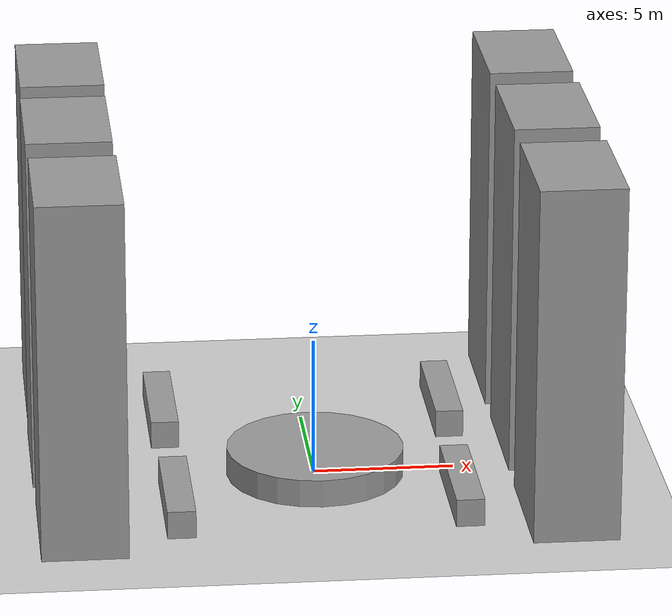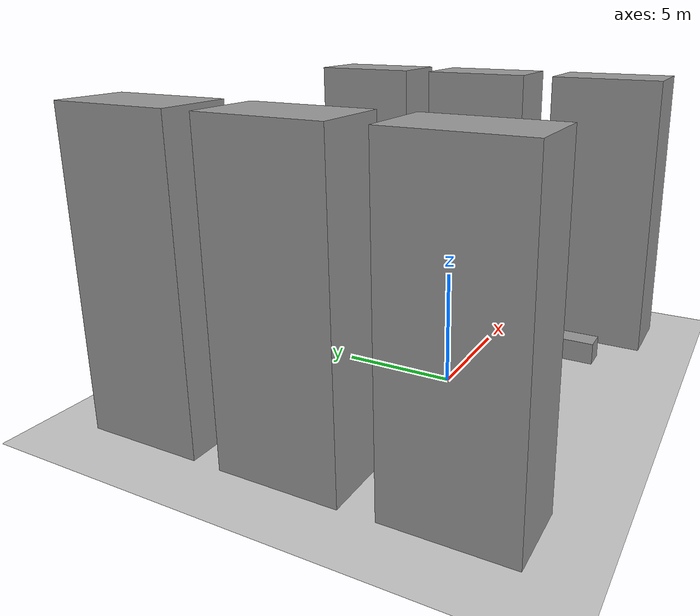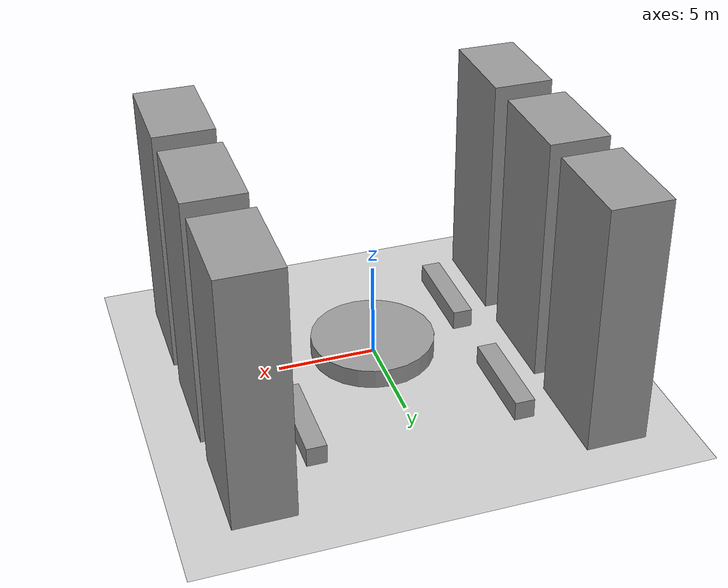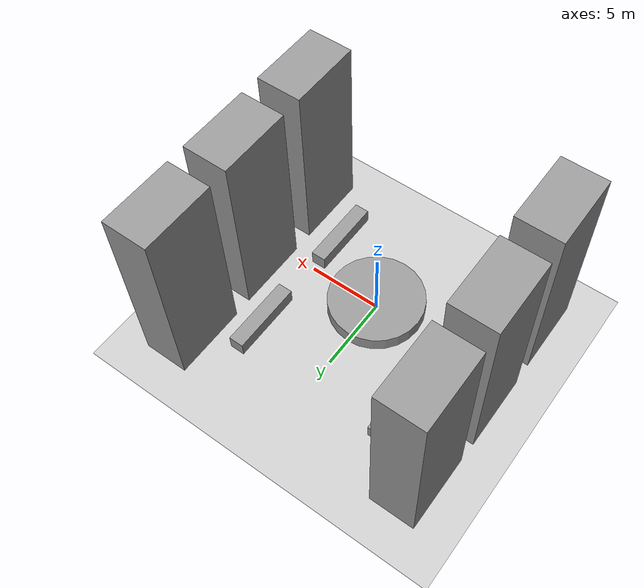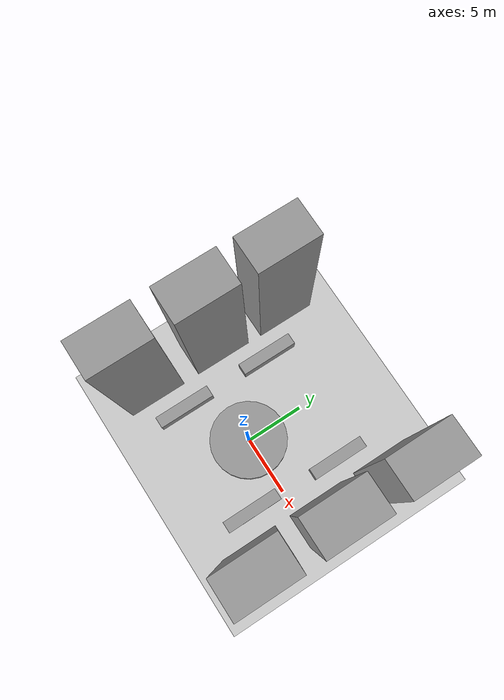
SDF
<sdf version="1.6">
 <world name="default">
  <light name="sun" type="directional">
   <pose>0 0 10 0 -0 0</pose>
   <diffuse>0.8 0.8 0.8 1</diffuse>
   <specular>0.1 0.1 0.1 1</specular>
   <attenuation>
    <range>1000</range>
    <constant>0.9</constant>
    <linear>0.01</linear>
    <quadratic>0.001</quadratic>
   </attenuation>
   <direction>-0.5 0.5 -1</direction>
  </light>
  <model name="ground_plane">
   <static>1</static>
   <link name="link">
    <collision name="collision">
     <geometry><plane><normal>0 0 1</normal><size>100 100</size></plane></geometry>
     <surface><friction><ode><mu>100</mu><mu2>50</mu2></ode></friction></surface>
    </collision>
    <visual name="visual">
     <cast_shadows>0</cast_shadows>
     <geometry><plane><normal>0 0 1</normal><size>100 100</size></plane></geometry>
     <material>
      <script><uri>file://media/materials/scripts/gazebo.material</uri><name>Gazebo/Grey</name></script>
     </material>
    </visual>
   </link>
  </model>
  <gravity>0 0 -9.8</gravity>
  <magnetic_field>6e-06 2.3e-05 -4.2e-05</magnetic_field>
  <atmosphere type="adiabatic"/>
  <physics name="default_physics" default="0" type="ode">
   <max_step_size>0.001</max_step_size>
   <real_time_factor>1</real_time_factor>
   <real_time_update_rate>1000</real_time_update_rate>
  </physics>
  <scene><ambient>0.4 0.4 0.4 1</ambient><background>0.7 0.7 0.7 1</background><shadows>1</shadows></scene>
  <spherical_coordinates>
   <surface_model>EARTH_WGS84</surface_model>
   <latitude_deg>0</latitude_deg>
   <longitude_deg>0</longitude_deg>
   <elevation>0</elevation>
   <heading_deg>0</heading_deg>
  </spherical_coordinates>
  <audio><device>default</device></audio>
  <model name="building">
   <link name="link_0">
    <inertial>
     <mass>194.191</mass>
     <inertia><ixx>3088.08</ixx><ixy>0</ixy><ixz>0</ixz><iyy>2833.44</iyy><iyz>0</iyz><izz>550.342</izz></inertia>
    </inertial>
    <pose>-1.79176 -1.02079 0 0 -0 0</pose>
    <visual name="visual">
     <geometry><box><size>3.02265 4.98717 12.8824</size></box></geometry>
     <material>
      <lighting>1</lighting>
      <script><uri>file://media/materials/scripts/gazebo.material</uri><name>Gazebo/Grey</name></script>
     </material>
    </visual>
    <collision name="collision">
     <geometry><box><size>3.02265 4.98717 12.8824</size></box></geometry>
     <surface>
      <friction>
       <ode><mu>1</mu><mu2>1</mu2><fdir1>0 0 0</fdir1><slip1>0</slip1><slip2>0</slip2></ode>
       <torsional>
        <coefficient>1</coefficient>
        <patch_radius>0</patch_radius>
        <surface_radius>0</surface_radius>
        <use_patch_radius>1</use_patch_radius>
        <ode><slip>0</slip></ode>
       </torsional>
      </friction>
      <bounce><restitution_coefficient>0</restitution_coefficient><threshold>1e+06</threshold></bounce>
      <contact>
       <collide_without_contact>0</collide_without_contact>
       <collide_without_contact_bitmask>1</collide_without_contact_bitmask>
       <collide_bitmask>1</collide_bitmask>
       <ode>
        <soft_cfm>0</soft_cfm>
        <soft_erp>0.2</soft_erp>
        <kp>1e+13</kp>
        <kd>1</kd>
        <max_vel>0.01</max_vel>
        <min_depth>0</min_depth>
       </ode>
       <bullet>
        <split_impulse>1</split_impulse>
        <split_impulse_penetration_threshold>-0.01</split_impulse_penetration_threshold>
        <soft_cfm>0</soft_cfm>
        <soft_erp>0.2</soft_erp>
        <kp>1e+13</kp>
        <kd>1</kd>
       </bullet>
      </contact>
     </surface>
    </collision>
   </link>
   <static>0</static>
   <pose>-6.72455 -3.44176 6.4412 0 -0 0.000209</pose>
  </model>
  <model name="building_0">
   <link name="link_0">
    <inertial>
     <mass>194.191</mass>
     <inertia><ixx>3088.08</ixx><ixy>0</ixy><ixz>0</ixz><iyy>2833.44</iyy><iyz>0</iyz><izz>550.342</izz></inertia>
    </inertial>
    <pose>-1.79176 -1.02079 0 0 -0 0</pose>
    <visual name="visual">
     <geometry><box><size>3.02265 4.98717 12.8824</size></box></geometry>
     <material>
      <lighting>1</lighting>
      <script><uri>file://media/materials/scripts/gazebo.material</uri><name>Gazebo/Grey</name></script>
     </material>
    </visual>
    <collision name="collision">
     <geometry><box><size>3.02265 4.98717 12.8824</size></box></geometry>
     <surface>
      <friction>
       <ode><mu>1</mu><mu2>1</mu2><fdir1>0 0 0</fdir1><slip1>0</slip1><slip2>0</slip2></ode>
       <torsional>
        <coefficient>1</coefficient>
        <patch_radius>0</patch_radius>
        <surface_radius>0</surface_radius>
        <use_patch_radius>1</use_patch_radius>
        <ode><slip>0</slip></ode>
       </torsional>
      </friction>
      <bounce><restitution_coefficient>0</restitution_coefficient><threshold>1e+06</threshold></bounce>
      <contact>
       <collide_without_contact>0</collide_without_contact>
       <collide_without_contact_bitmask>1</collide_without_contact_bitmask>
       <collide_bitmask>1</collide_bitmask>
       <ode>
        <soft_cfm>0</soft_cfm>
        <soft_erp>0.2</soft_erp>
        <kp>1e+13</kp>
        <kd>1</kd>
        <max_vel>0.01</max_vel>
        <min_depth>0</min_depth>
       </ode>
       <bullet>
        <split_impulse>1</split_impulse>
        <split_impulse_penetration_threshold>-0.01</split_impulse_penetration_threshold>
        <soft_cfm>0</soft_cfm>
        <soft_erp>0.2</soft_erp>
        <kp>1e+13</kp>
        <kd>1</kd>
       </bullet>
      </contact>
     </surface>
    </collision>
   </link>
   <static>0</static>
   <pose>10.2598 -3.46716 6.4412 0 0 -7.2e-05</pose>
  </model>
  <model name="building_clone">
   <link name="link_0">
    <inertial>
     <mass>194.191</mass>
     <inertia><ixx>3088.08</ixx><ixy>0</ixy><ixz>0</ixz><iyy>2833.44</iyy><iyz>0</iyz><izz>550.342</izz></inertia>
    </inertial>
    <pose>-1.79176 -1.02079 0 0 -0 0</pose>
    <visual name="visual">
     <geometry><box><size>3.02265 4.98717 12.8824</size></box></geometry>
     <material>
      <lighting>1</lighting>
      <script><uri>file://media/materials/scripts/gazebo.material</uri><name>Gazebo/Grey</name></script>
     </material>
    </visual>
    <collision name="collision">
     <geometry><box><size>3.02265 4.98717 12.8824</size></box></geometry>
     <surface>
      <friction>
       <ode><mu>1</mu><mu2>1</mu2><fdir1>0 0 0</fdir1><slip1>0</slip1><slip2>0</slip2></ode>
       <torsional>
        <coefficient>1</coefficient>
        <patch_radius>0</patch_radius>
        <surface_radius>0</surface_radius>
        <use_patch_radius>1</use_patch_radius>
        <ode><slip>0</slip></ode>
       </torsional>
      </friction>
      <bounce><restitution_coefficient>0</restitution_coefficient><threshold>1e+06</threshold></bounce>
      <contact>
       <collide_without_contact>0</collide_without_contact>
       <collide_without_contact_bitmask>1</collide_without_contact_bitmask>
       <collide_bitmask>1</collide_bitmask>
       <ode>
        <soft_cfm>0</soft_cfm>
        <soft_erp>0.2</soft_erp>
        <kp>1e+13</kp>
        <kd>1</kd>
        <max_vel>0.01</max_vel>
        <min_depth>0</min_depth>
       </ode>
       <bullet>
        <split_impulse>1</split_impulse>
        <split_impulse_penetration_threshold>-0.01</split_impulse_penetration_threshold>
        <soft_cfm>0</soft_cfm>
        <soft_erp>0.2</soft_erp>
        <kp>1e+13</kp>
        <kd>1</kd>
       </bullet>
      </contact>
     </surface>
    </collision>
   </link>
   <static>0</static>
   <pose>-6.76741 2.98431 6.4412 0 -0 0.000238</pose>
  </model>
  <model name="building_clone_0">
   <link name="link_0">
    <inertial>
     <mass>194.191</mass>
     <inertia><ixx>3088.08</ixx><ixy>0</ixy><ixz>0</ixz><iyy>2833.44</iyy><iyz>0</iyz><izz>550.342</izz></inertia>
    </inertial>
    <pose>-1.79176 -1.02079 0 0 -0 0</pose>
    <visual name="visual">
     <geometry><box><size>3.02265 4.98717 12.8824</size></box></geometry>
     <material>
      <lighting>1</lighting>
      <script><uri>file://media/materials/scripts/gazebo.material</uri><name>Gazebo/Grey</name></script>
     </material>
    </visual>
    <collision name="collision">
     <geometry><box><size>3.02265 4.98717 12.8824</size></box></geometry>
     <surface>
      <friction>
       <ode><mu>1</mu><mu2>1</mu2><fdir1>0 0 0</fdir1><slip1>0</slip1><slip2>0</slip2></ode>
       <torsional>
        <coefficient>1</coefficient>
        <patch_radius>0</patch_radius>
        <surface_radius>0</surface_radius>
        <use_patch_radius>1</use_patch_radius>
        <ode><slip>0</slip></ode>
       </torsional>
      </friction>
      <bounce><restitution_coefficient>0</restitution_coefficient><threshold>1e+06</threshold></bounce>
      <contact>
       <collide_without_contact>0</collide_without_contact>
       <collide_without_contact_bitmask>1</collide_without_contact_bitmask>
       <collide_bitmask>1</collide_bitmask>
       <ode>
        <soft_cfm>0</soft_cfm>
        <soft_erp>0.2</soft_erp>
        <kp>1e+13</kp>
        <kd>1</kd>
        <max_vel>0.01</max_vel>
        <min_depth>0</min_depth>
       </ode>
       <bullet>
        <split_impulse>1</split_impulse>
        <split_impulse_penetration_threshold>-0.01</split_impulse_penetration_threshold>
        <soft_cfm>0</soft_cfm>
        <soft_erp>0.2</soft_erp>
        <kp>1e+13</kp>
        <kd>1</kd>
       </bullet>
      </contact>
     </surface>
    </collision>
   </link>
   <static>0</static>
   <pose>10.2565 2.92267 6.4412 0 -0 0.0004</pose>
  </model>
  <model name="building_clone_1">
   <link name="link_0">
    <inertial>
     <mass>194.191</mass>
     <inertia><ixx>3088.08</ixx><ixy>0</ixy><ixz>0</ixz><iyy>2833.44</iyy><iyz>0</iyz><izz>550.342</izz></inertia>
    </inertial>
    <pose>-1.79176 -1.02079 0 0 -0 0</pose>
    <visual name="visual">
     <geometry><box><size>3.02265 4.98717 12.8824</size></box></geometry>
     <material>
      <lighting>1</lighting>
      <script><uri>file://media/materials/scripts/gazebo.material</uri><name>Gazebo/Grey</name></script>
     </material>
    </visual>
    <collision name="collision">
     <geometry><box><size>3.02265 4.98717 12.8824</size></box></geometry>
     <surface>
      <friction>
       <ode><mu>1</mu><mu2>1</mu2><fdir1>0 0 0</fdir1><slip1>0</slip1><slip2>0</slip2></ode>
       <torsional>
        <coefficient>1</coefficient>
        <patch_radius>0</patch_radius>
        <surface_radius>0</surface_radius>
        <use_patch_radius>1</use_patch_radius>
        <ode><slip>0</slip></ode>
       </torsional>
      </friction>
      <bounce><restitution_coefficient>0</restitution_coefficient><threshold>1e+06</threshold></bounce>
      <contact>
       <collide_without_contact>0</collide_without_contact>
       <collide_without_contact_bitmask>1</collide_without_contact_bitmask>
       <collide_bitmask>1</collide_bitmask>
       <ode>
        <soft_cfm>0</soft_cfm>
        <soft_erp>0.2</soft_erp>
        <kp>1e+13</kp>
        <kd>1</kd>
        <max_vel>0.01</max_vel>
        <min_depth>0</min_depth>
       </ode>
       <bullet>
        <split_impulse>1</split_impulse>
        <split_impulse_penetration_threshold>-0.01</split_impulse_penetration_threshold>
        <soft_cfm>0</soft_cfm>
        <soft_erp>0.2</soft_erp>
        <kp>1e+13</kp>
        <kd>1</kd>
       </bullet>
      </contact>
     </surface>
    </collision>
   </link>
   <static>0</static>
   <pose>-6.72828 9.19419 6.4412 0 -0 0.000237</pose>
  </model>
  <model name="building_clone_2">
   <link name="link_0">
    <inertial>
     <mass>194.191</mass>
     <inertia><ixx>3088.08</ixx><ixy>0</ixy><ixz>0</ixz><iyy>2833.44</iyy><iyz>0</iyz><izz>550.342</izz></inertia>
    </inertial>
    <pose>-1.79176 -1.02079 0 0 -0 0</pose>
    <visual name="visual">
     <geometry><box><size>3.02265 4.98717 12.8824</size></box></geometry>
     <material>
      <lighting>1</lighting>
      <script><uri>file://media/materials/scripts/gazebo.material</uri><name>Gazebo/Grey</name></script>
     </material>
    </visual>
    <collision name="collision">
     <geometry><box><size>3.02265 4.98717 12.8824</size></box></geometry>
     <surface>
      <friction>
       <ode><mu>1</mu><mu2>1</mu2><fdir1>0 0 0</fdir1><slip1>0</slip1><slip2>0</slip2></ode>
       <torsional>
        <coefficient>1</coefficient>
        <patch_radius>0</patch_radius>
        <surface_radius>0</surface_radius>
        <use_patch_radius>1</use_patch_radius>
        <ode><slip>0</slip></ode>
       </torsional>
      </friction>
      <bounce><restitution_coefficient>0</restitution_coefficient><threshold>1e+06</threshold></bounce>
      <contact>
       <collide_without_contact>0</collide_without_contact>
       <collide_without_contact_bitmask>1</collide_without_contact_bitmask>
       <collide_bitmask>1</collide_bitmask>
       <ode>
        <soft_cfm>0</soft_cfm>
        <soft_erp>0.2</soft_erp>
        <kp>1e+13</kp>
        <kd>1</kd>
        <max_vel>0.01</max_vel>
        <min_depth>0</min_depth>
       </ode>
       <bullet>
        <split_impulse>1</split_impulse>
        <split_impulse_penetration_threshold>-0.01</split_impulse_penetration_threshold>
        <soft_cfm>0</soft_cfm>
        <soft_erp>0.2</soft_erp>
        <kp>1e+13</kp>
        <kd>1</kd>
       </bullet>
      </contact>
     </surface>
    </collision>
   </link>
   <static>0</static>
   <pose>10.2273 9.18212 6.4412 0 -0 0.000232</pose>
  </model>
  <model name="unit_box">
   <pose>-5.10416 -2.98697 0.498057 0.000793 -0 9e-06</pose>
   <link name="link">
    <inertial>
     <mass>1</mass>
     <inertia>
      <ixx>0.166667</ixx>
      <ixy>0</ixy>
      <ixz>0</ixz>
      <iyy>0.166667</iyy>
      <iyz>0</iyz>
      <izz>0.166667</izz>
     </inertia>
    </inertial>
    <collision name="collision"><geometry><box><size>1 4.90475 1</size></box></geometry></collision>
    <visual name="visual">
     <geometry><box><size>1 4.90475 1</size></box></geometry>
     <material>
      <script><name>Gazebo/Grey</name><uri>file://media/materials/scripts/gazebo.material</uri></script>
     </material>
    </visual>
   </link>
  </model>
  <model name="unit_box_clone">
   <pose>-5.16608 5.09198 0.498057 0.000793 -0 9e-06</pose>
   <link name="link">
    <inertial>
     <mass>1</mass>
     <inertia>
      <ixx>0.166667</ixx>
      <ixy>0</ixy>
      <ixz>0</ixz>
      <iyy>0.166667</iyy>
      <iyz>0</iyz>
      <izz>0.166667</izz>
     </inertia>
    </inertial>
    <collision name="collision"><geometry><box><size>1 4.90475 1</size></box></geometry></collision>
    <visual name="visual">
     <geometry><box><size>1 4.90475 1</size></box></geometry>
     <material>
      <script><name>Gazebo/Grey</name><uri>file://media/materials/scripts/gazebo.material</uri></script>
     </material>
    </visual>
   </link>
  </model>
  <model name="unit_box_clone_0">
   <pose>4.97279 -2.88176 0.498057 0.000793 -0 9e-06</pose>
   <link name="link">
    <inertial>
     <mass>1</mass>
     <inertia>
      <ixx>0.166667</ixx>
      <ixy>0</ixy>
      <ixz>0</ixz>
      <iyy>0.166667</iyy>
      <iyz>0</iyz>
      <izz>0.166667</izz>
     </inertia>
    </inertial>
    <collision name="collision"><geometry><box><size>1 4.90475 1</size></box></geometry></collision>
    <visual name="visual">
     <geometry><box><size>1 4.90475 1</size></box></geometry>
     <material>
      <script><name>Gazebo/Grey</name><uri>file://media/materials/scripts/gazebo.material</uri></script>
     </material>
    </visual>
   </link>
  </model>
  <model name="unit_box_clone_1">
   <pose>5.21507 5.19377 0.498057 0.000793 -0 9e-06</pose>
   <link name="link">
    <inertial>
     <mass>1</mass>
     <inertia>
      <ixx>0.166667</ixx>
      <ixy>0</ixy>
      <ixz>0</ixz>
      <iyy>0.166667</iyy>
      <iyz>0</iyz>
      <izz>0.166667</izz>
     </inertia>
    </inertial>
    <collision name="collision"><geometry><box><size>1 4.90475 1</size></box></geometry></collision>
    <visual name="visual">
     <geometry><box><size>1 4.90475 1</size></box></geometry>
     <material>
      <script><name>Gazebo/Grey</name><uri>file://media/materials/scripts/gazebo.material</uri></script>
     </material>
    </visual>
   </link>
  </model>
  <model name="unit_cylinder">
   <pose>0.033353 -0.052505 0.499982 -6e-06 -6e-06 3.1e-05</pose>
   <link name="link">
    <inertial>
     <mass>1</mass>
     <inertia><ixx>0.145833</ixx><ixy>0</ixy><ixz>0</ixz><iyy>0.145833</iyy><iyz>0</iyz><izz>0.125</izz></inertia>
    </inertial>
    <collision name="collision">
     <geometry><cylinder><radius>3.16583</radius><length>1</length></cylinder></geometry>
    </collision>
    <visual name="visual">
     <geometry><cylinder><radius>3.16583</radius><length>1</length></cylinder></geometry>
     <material>
      <script><name>Gazebo/Grey</name><uri>file://media/materials/scripts/gazebo.material</uri></script>
     </material>
    </visual>
   </link>
  </model>
 </world>
</sdf>
